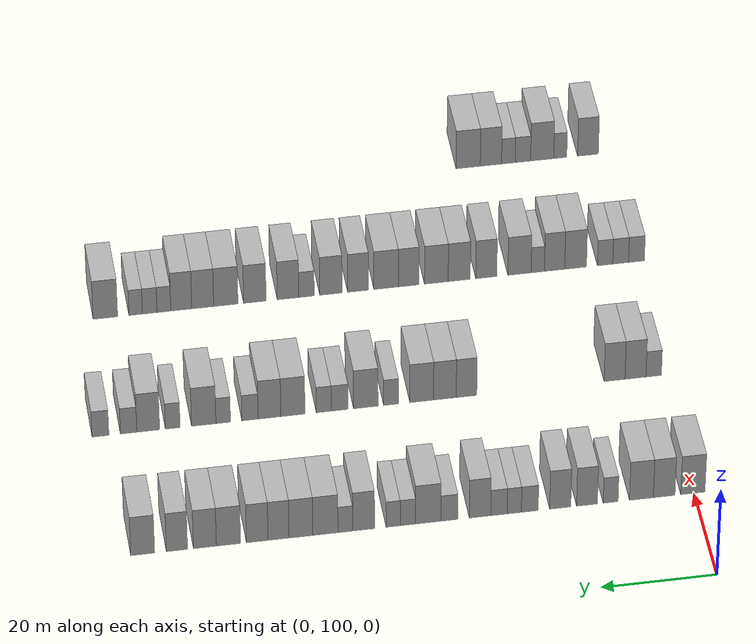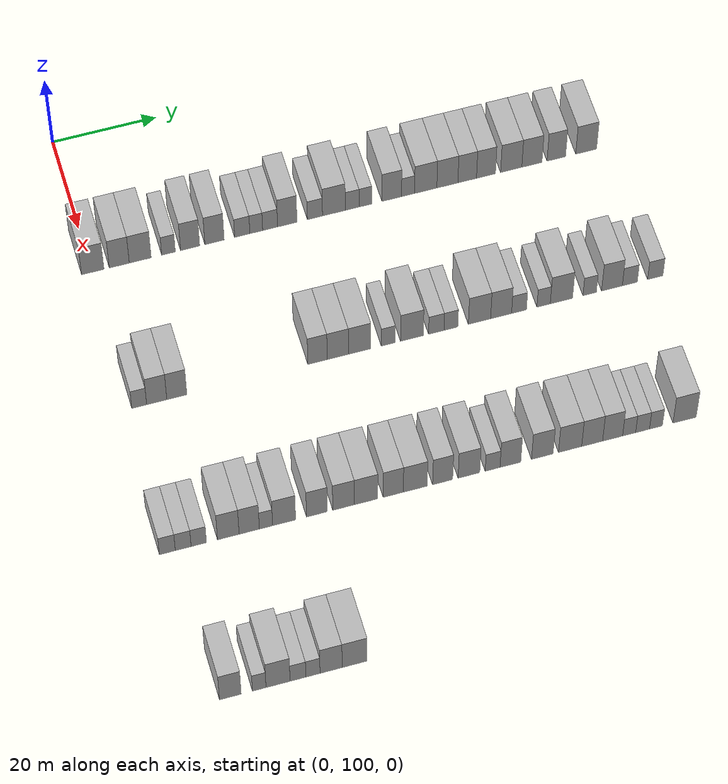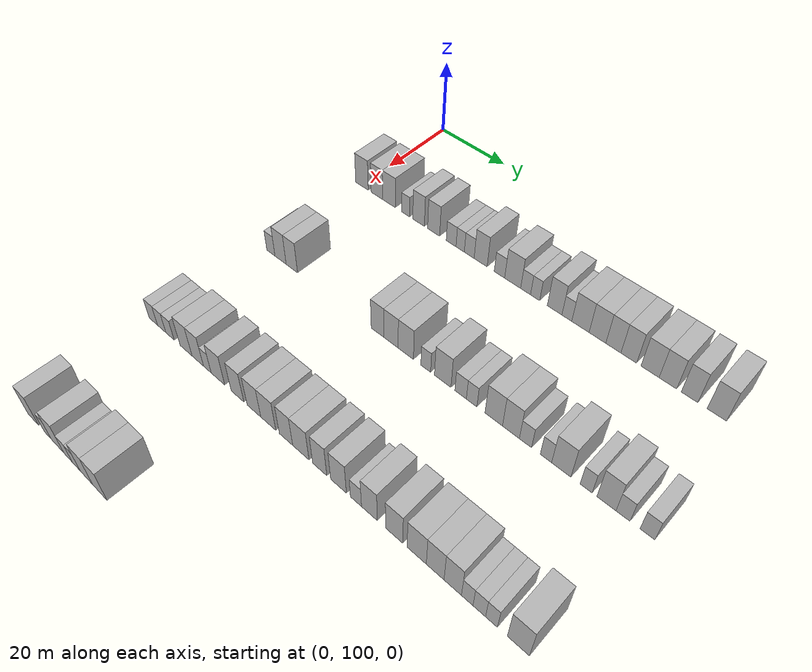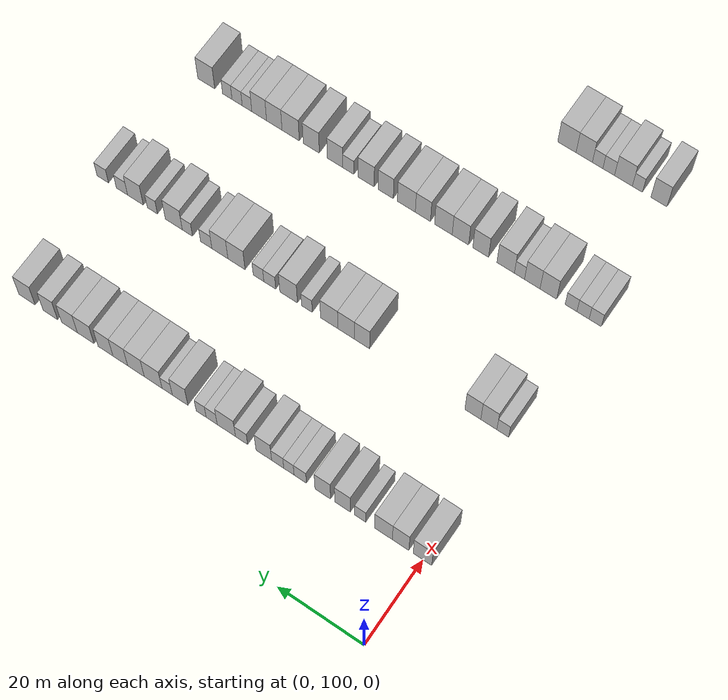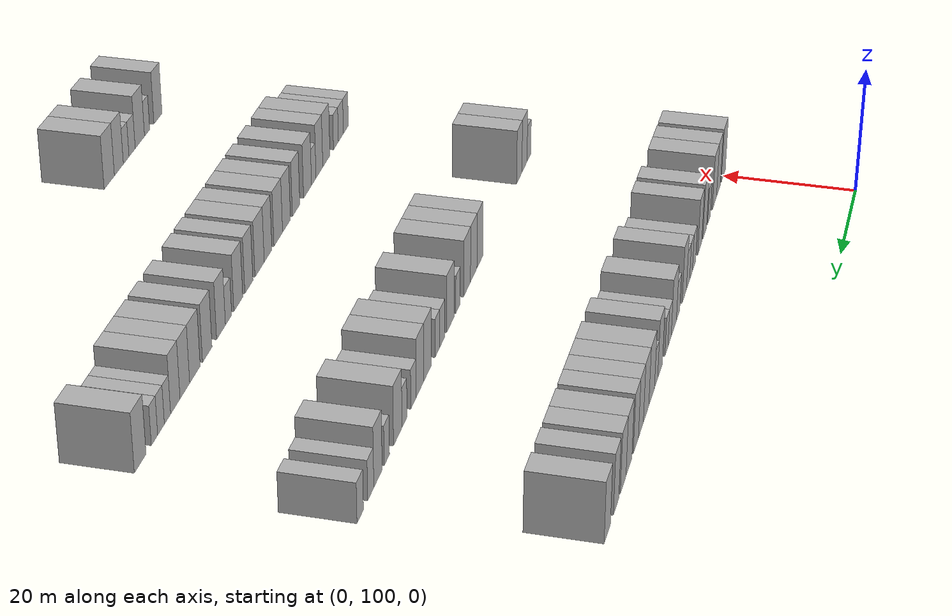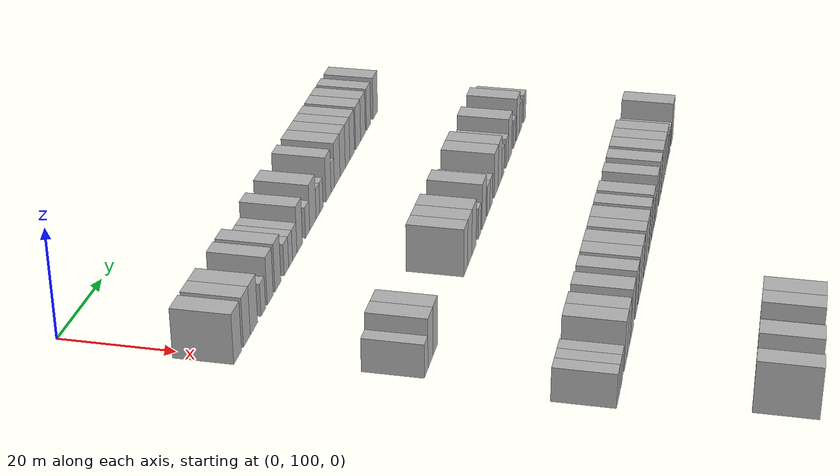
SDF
<sdf version="1.6">
 <world name="default">
  <model name="building_137">
   <static>1</static>
   <pose>25.0000 100.2034 0 0.000000 0.000000 0.000000</pose>
   <link name="link">
    <pose>0 0 4.50 0 0 0</pose>
    <collision name="collision"><geometry><box><size>10.0000 4.2472 9.0000</size></box></geometry></collision>
    <visual name="visual">
     <cast_shadows>0</cast_shadows>
     <geometry><box><size>10.0000 4.2472 9.0000</size></box></geometry>
     <material>
      <script>
       <uri>model://HANNAS_wall/materials/scripts</uri>
       <uri>model://HANNAS_wall/materials/textures</uri>
       <name>vrc/HANNAS_wall</name>
      </script>
     </material>
    </visual>
   </link>
  </model>
  <model name="building_138">
   <static>1</static>
   <pose>25.0000 105.2245 0 0.000000 0.000000 0.000000</pose>
   <link name="link">
    <pose>0 0 4.50 0 0 0</pose>
    <collision name="collision"><geometry><box><size>10.0000 3.7949 9.0000</size></box></geometry></collision>
    <visual name="visual">
     <cast_shadows>0</cast_shadows>
     <geometry><box><size>10.0000 3.7949 9.0000</size></box></geometry>
     <material>
      <script>
       <uri>model://HANNAS_wall/materials/scripts</uri>
       <uri>model://HANNAS_wall/materials/textures</uri>
       <name>vrc/HANNAS_wall</name>
      </script>
     </material>
    </visual>
   </link>
  </model>
  <model name="building_139">
   <static>1</static>
   <pose>25.0000 109.2016 0 0.000000 0.000000 0.000000</pose>
   <link name="link">
    <pose>0 0 4.50 0 0 0</pose>
    <collision name="collision"><geometry><box><size>10.0000 4.1594 9.0000</size></box></geometry></collision>
    <visual name="visual">
     <cast_shadows>0</cast_shadows>
     <geometry><box><size>10.0000 4.1594 9.0000</size></box></geometry>
     <material>
      <script>
       <uri>model://HANNAS_wall/materials/scripts</uri>
       <uri>model://HANNAS_wall/materials/textures</uri>
       <name>vrc/HANNAS_wall</name>
      </script>
     </material>
    </visual>
   </link>
  </model>
  <model name="building_140">
   <static>1</static>
   <pose>25.0000 114.5793 0 0.000000 0.000000 0.000000</pose>
   <link name="link">
    <pose>0 0 3.00 0 0 0</pose>
    <collision name="collision"><geometry><box><size>10.0000 2.5961 6.0000</size></box></geometry></collision>
    <visual name="visual">
     <cast_shadows>0</cast_shadows>
     <geometry><box><size>10.0000 2.5961 6.0000</size></box></geometry>
     <material>
      <script>
       <uri>model://HANNAS_wall/materials/scripts</uri>
       <uri>model://HANNAS_wall/materials/textures</uri>
       <name>vrc/HANNAS_wall</name>
      </script>
     </material>
    </visual>
   </link>
  </model>
  <model name="building_141">
   <static>1</static>
   <pose>25.0000 118.6974 0 0.000000 0.000000 0.000000</pose>
   <link name="link">
    <pose>0 0 4.50 0 0 0</pose>
    <collision name="collision"><geometry><box><size>10.0000 3.6401 9.0000</size></box></geometry></collision>
    <visual name="visual">
     <cast_shadows>0</cast_shadows>
     <geometry><box><size>10.0000 3.6401 9.0000</size></box></geometry>
     <material>
      <script>
       <uri>model://HANNAS_wall/materials/scripts</uri>
       <uri>model://HANNAS_wall/materials/textures</uri>
       <name>vrc/HANNAS_wall</name>
      </script>
     </material>
    </visual>
   </link>
  </model>
  <model name="building_142">
   <static>1</static>
   <pose>25.0000 123.3588 0 0.000000 0.000000 0.000000</pose>
   <link name="link">
    <pose>0 0 4.50 0 0 0</pose>
    <collision name="collision"><geometry><box><size>10.0000 3.6826 9.0000</size></box></geometry></collision>
    <visual name="visual">
     <cast_shadows>0</cast_shadows>
     <geometry><box><size>10.0000 3.6826 9.0000</size></box></geometry>
     <material>
      <script>
       <uri>model://HANNAS_wall/materials/scripts</uri>
       <uri>model://HANNAS_wall/materials/textures</uri>
       <name>vrc/HANNAS_wall</name>
      </script>
     </material>
    </visual>
   </link>
  </model>
  <model name="building_143">
   <static>1</static>
   <pose>25.0000 128.6616 0 0.000000 0.000000 0.000000</pose>
   <link name="link">
    <pose>0 0 3.00 0 0 0</pose>
    <collision name="collision"><geometry><box><size>10.0000 2.9231 6.0000</size></box></geometry></collision>
    <visual name="visual">
     <cast_shadows>0</cast_shadows>
     <geometry><box><size>10.0000 2.9231 6.0000</size></box></geometry>
     <material>
      <script>
       <uri>model://HANNAS_wall/materials/scripts</uri>
       <uri>model://HANNAS_wall/materials/textures</uri>
       <name>vrc/HANNAS_wall</name>
      </script>
     </material>
    </visual>
   </link>
  </model>
  <model name="building_144">
   <static>1</static>
   <pose>25.0000 131.3514 0 0.000000 0.000000 0.000000</pose>
   <link name="link">
    <pose>0 0 3.00 0 0 0</pose>
    <collision name="collision"><geometry><box><size>10.0000 2.4565 6.0000</size></box></geometry></collision>
    <visual name="visual">
     <cast_shadows>0</cast_shadows>
     <geometry><box><size>10.0000 2.4565 6.0000</size></box></geometry>
     <material>
      <script>
       <uri>model://HANNAS_wall/materials/scripts</uri>
       <uri>model://HANNAS_wall/materials/textures</uri>
       <name>vrc/HANNAS_wall</name>
      </script>
     </material>
    </visual>
   </link>
  </model>
  <model name="building_145">
   <static>1</static>
   <pose>25.0000 134.0137 0 0.000000 0.000000 0.000000</pose>
   <link name="link">
    <pose>0 0 3.00 0 0 0</pose>
    <collision name="collision"><geometry><box><size>10.0000 2.8680 6.0000</size></box></geometry></collision>
    <visual name="visual">
     <cast_shadows>0</cast_shadows>
     <geometry><box><size>10.0000 2.8680 6.0000</size></box></geometry>
     <material>
      <script>
       <uri>model://HANNAS_wall/materials/scripts</uri>
       <uri>model://HANNAS_wall/materials/textures</uri>
       <name>vrc/HANNAS_wall</name>
      </script>
     </material>
    </visual>
   </link>
  </model>
  <model name="building_146">
   <static>1</static>
   <pose>25.0000 137.3089 0 0.000000 0.000000 0.000000</pose>
   <link name="link">
    <pose>0 0 4.50 0 0 0</pose>
    <collision name="collision"><geometry><box><size>10.0000 3.7223 9.0000</size></box></geometry></collision>
    <visual name="visual">
     <cast_shadows>0</cast_shadows>
     <geometry><box><size>10.0000 3.7223 9.0000</size></box></geometry>
     <material>
      <script>
       <uri>model://HANNAS_wall/materials/scripts</uri>
       <uri>model://HANNAS_wall/materials/textures</uri>
       <name>vrc/HANNAS_wall</name>
      </script>
     </material>
    </visual>
   </link>
  </model>
  <model name="building_147">
   <static>1</static>
   <pose>25.0000 142.6289 0 0.000000 0.000000 0.000000</pose>
   <link name="link">
    <pose>0 0 3.00 0 0 0</pose>
    <collision name="collision"><geometry><box><size>10.0000 2.9177 6.0000</size></box></geometry></collision>
    <visual name="visual">
     <cast_shadows>0</cast_shadows>
     <geometry><box><size>10.0000 2.9177 6.0000</size></box></geometry>
     <material>
      <script>
       <uri>model://HANNAS_wall/materials/scripts</uri>
       <uri>model://HANNAS_wall/materials/textures</uri>
       <name>vrc/HANNAS_wall</name>
      </script>
     </material>
    </visual>
   </link>
  </model>
  <model name="building_148">
   <static>1</static>
   <pose>25.0000 146.2882 0 0.000000 0.000000 0.000000</pose>
   <link name="link">
    <pose>0 0 4.50 0 0 0</pose>
    <collision name="collision"><geometry><box><size>10.0000 4.4008 9.0000</size></box></geometry></collision>
    <visual name="visual">
     <cast_shadows>0</cast_shadows>
     <geometry><box><size>10.0000 4.4008 9.0000</size></box></geometry>
     <material>
      <script>
       <uri>model://HANNAS_wall/materials/scripts</uri>
       <uri>model://HANNAS_wall/materials/textures</uri>
       <name>vrc/HANNAS_wall</name>
      </script>
     </material>
    </visual>
   </link>
  </model>
  <model name="building_149">
   <static>1</static>
   <pose>25.0000 149.8187 0 0.000000 0.000000 0.000000</pose>
   <link name="link">
    <pose>0 0 3.00 0 0 0</pose>
    <collision name="collision"><geometry><box><size>10.0000 2.6602 6.0000</size></box></geometry></collision>
    <visual name="visual">
     <cast_shadows>0</cast_shadows>
     <geometry><box><size>10.0000 2.6602 6.0000</size></box></geometry>
     <material>
      <script>
       <uri>model://HANNAS_wall/materials/scripts</uri>
       <uri>model://HANNAS_wall/materials/textures</uri>
       <name>vrc/HANNAS_wall</name>
      </script>
     </material>
    </visual>
   </link>
  </model>
  <model name="building_150">
   <static>1</static>
   <pose>25.0000 152.3647 0 0.000000 0.000000 0.000000</pose>
   <link name="link">
    <pose>0 0 3.00 0 0 0</pose>
    <collision name="collision"><geometry><box><size>10.0000 2.4318 6.0000</size></box></geometry></collision>
    <visual name="visual">
     <cast_shadows>0</cast_shadows>
     <geometry><box><size>10.0000 2.4318 6.0000</size></box></geometry>
     <material>
      <script>
       <uri>model://HANNAS_wall/materials/scripts</uri>
       <uri>model://HANNAS_wall/materials/textures</uri>
       <name>vrc/HANNAS_wall</name>
      </script>
     </material>
    </visual>
   </link>
  </model>
  <model name="building_151">
   <static>1</static>
   <pose>25.0000 157.4785 0 0.000000 0.000000 0.000000</pose>
   <link name="link">
    <pose>0 0 4.50 0 0 0</pose>
    <collision name="collision"><geometry><box><size>10.0000 3.7959 9.0000</size></box></geometry></collision>
    <visual name="visual">
     <cast_shadows>0</cast_shadows>
     <geometry><box><size>10.0000 3.7959 9.0000</size></box></geometry>
     <material>
      <script>
       <uri>model://HANNAS_wall/materials/scripts</uri>
       <uri>model://HANNAS_wall/materials/textures</uri>
       <name>vrc/HANNAS_wall</name>
      </script>
     </material>
    </visual>
   </link>
  </model>
  <model name="building_152">
   <static>1</static>
   <pose>25.0000 160.6362 0 0.000000 0.000000 0.000000</pose>
   <link name="link">
    <pose>0 0 3.00 0 0 0</pose>
    <collision name="collision"><geometry><box><size>10.0000 2.5195 6.0000</size></box></geometry></collision>
    <visual name="visual">
     <cast_shadows>0</cast_shadows>
     <geometry><box><size>10.0000 2.5195 6.0000</size></box></geometry>
     <material>
      <script>
       <uri>model://HANNAS_wall/materials/scripts</uri>
       <uri>model://HANNAS_wall/materials/textures</uri>
       <name>vrc/HANNAS_wall</name>
      </script>
     </material>
    </visual>
   </link>
  </model>
  <model name="building_153">
   <static>1</static>
   <pose>25.0000 164.0690 0 0.000000 0.000000 0.000000</pose>
   <link name="link">
    <pose>0 0 4.50 0 0 0</pose>
    <collision name="collision"><geometry><box><size>10.0000 4.3460 9.0000</size></box></geometry></collision>
    <visual name="visual">
     <cast_shadows>0</cast_shadows>
     <geometry><box><size>10.0000 4.3460 9.0000</size></box></geometry>
     <material>
      <script>
       <uri>model://HANNAS_wall/materials/scripts</uri>
       <uri>model://HANNAS_wall/materials/textures</uri>
       <name>vrc/HANNAS_wall</name>
      </script>
     </material>
    </visual>
   </link>
  </model>
  <model name="building_154">
   <static>1</static>
   <pose>25.0000 168.2924 0 0.000000 0.000000 0.000000</pose>
   <link name="link">
    <pose>0 0 4.50 0 0 0</pose>
    <collision name="collision"><geometry><box><size>10.0000 4.1008 9.0000</size></box></geometry></collision>
    <visual name="visual">
     <cast_shadows>0</cast_shadows>
     <geometry><box><size>10.0000 4.1008 9.0000</size></box></geometry>
     <material>
      <script>
       <uri>model://HANNAS_wall/materials/scripts</uri>
       <uri>model://HANNAS_wall/materials/textures</uri>
       <name>vrc/HANNAS_wall</name>
      </script>
     </material>
    </visual>
   </link>
  </model>
  <model name="building_155">
   <static>1</static>
   <pose>25.0000 172.1578 0 0.000000 0.000000 0.000000</pose>
   <link name="link">
    <pose>0 0 4.50 0 0 0</pose>
    <collision name="collision"><geometry><box><size>10.0000 3.6300 9.0000</size></box></geometry></collision>
    <visual name="visual">
     <cast_shadows>0</cast_shadows>
     <geometry><box><size>10.0000 3.6300 9.0000</size></box></geometry>
     <material>
      <script>
       <uri>model://HANNAS_wall/materials/scripts</uri>
       <uri>model://HANNAS_wall/materials/textures</uri>
       <name>vrc/HANNAS_wall</name>
      </script>
     </material>
    </visual>
   </link>
  </model>
  <model name="building_156">
   <static>1</static>
   <pose>25.0000 175.8268 0 0.000000 0.000000 0.000000</pose>
   <link name="link">
    <pose>0 0 4.50 0 0 0</pose>
    <collision name="collision"><geometry><box><size>10.0000 3.7079 9.0000</size></box></geometry></collision>
    <visual name="visual">
     <cast_shadows>0</cast_shadows>
     <geometry><box><size>10.0000 3.7079 9.0000</size></box></geometry>
     <material>
      <script>
       <uri>model://HANNAS_wall/materials/scripts</uri>
       <uri>model://HANNAS_wall/materials/textures</uri>
       <name>vrc/HANNAS_wall</name>
      </script>
     </material>
    </visual>
   </link>
  </model>
  <model name="building_157">
   <static>1</static>
   <pose>25.0000 180.7628 0 0.000000 0.000000 0.000000</pose>
   <link name="link">
    <pose>0 0 4.50 0 0 0</pose>
    <collision name="collision"><geometry><box><size>10.0000 4.1640 9.0000</size></box></geometry></collision>
    <visual name="visual">
     <cast_shadows>0</cast_shadows>
     <geometry><box><size>10.0000 4.1640 9.0000</size></box></geometry>
     <material>
      <script>
       <uri>model://HANNAS_wall/materials/scripts</uri>
       <uri>model://HANNAS_wall/materials/textures</uri>
       <name>vrc/HANNAS_wall</name>
      </script>
     </material>
    </visual>
   </link>
  </model>
  <model name="building_158">
   <static>1</static>
   <pose>25.0000 184.8192 0 0.000000 0.000000 0.000000</pose>
   <link name="link">
    <pose>0 0 4.50 0 0 0</pose>
    <collision name="collision"><geometry><box><size>10.0000 3.9488 9.0000</size></box></geometry></collision>
    <visual name="visual">
     <cast_shadows>0</cast_shadows>
     <geometry><box><size>10.0000 3.9488 9.0000</size></box></geometry>
     <material>
      <script>
       <uri>model://HANNAS_wall/materials/scripts</uri>
       <uri>model://HANNAS_wall/materials/textures</uri>
       <name>vrc/HANNAS_wall</name>
      </script>
     </material>
    </visual>
   </link>
  </model>
  <model name="building_159">
   <static>1</static>
   <pose>25.0000 189.6138 0 0.000000 0.000000 0.000000</pose>
   <link name="link">
    <pose>0 0 4.50 0 0 0</pose>
    <collision name="collision"><geometry><box><size>10.0000 3.6404 9.0000</size></box></geometry></collision>
    <visual name="visual">
     <cast_shadows>0</cast_shadows>
     <geometry><box><size>10.0000 3.6404 9.0000</size></box></geometry>
     <material>
      <script>
       <uri>model://HANNAS_wall/materials/scripts</uri>
       <uri>model://HANNAS_wall/materials/textures</uri>
       <name>vrc/HANNAS_wall</name>
      </script>
     </material>
    </visual>
   </link>
  </model>
  <model name="building_160">
   <static>1</static>
   <pose>25.0000 195.4883 0 0.000000 0.000000 0.000000</pose>
   <link name="link">
    <pose>0 0 4.50 0 0 0</pose>
    <collision name="collision"><geometry><box><size>10.0000 4.1088 9.0000</size></box></geometry></collision>
    <visual name="visual">
     <cast_shadows>0</cast_shadows>
     <geometry><box><size>10.0000 4.1088 9.0000</size></box></geometry>
     <material>
      <script>
       <uri>model://HANNAS_wall/materials/scripts</uri>
       <uri>model://HANNAS_wall/materials/textures</uri>
       <name>vrc/HANNAS_wall</name>
      </script>
     </material>
    </visual>
   </link>
  </model>
  <model name="building_363">
   <static>1</static>
   <pose>55.0000 101.3332 0 0.000000 0.000000 0.000000</pose>
   <link name="link">
    <pose>0 0 3.00 0 0 0</pose>
    <collision name="collision"><geometry><box><size>10.0000 2.7608 6.0000</size></box></geometry></collision>
    <visual name="visual">
     <cast_shadows>0</cast_shadows>
     <geometry><box><size>10.0000 2.7608 6.0000</size></box></geometry>
     <material>
      <script>
       <uri>model://HANNAS_wall/materials/scripts</uri>
       <uri>model://HANNAS_wall/materials/textures</uri>
       <name>vrc/HANNAS_wall</name>
      </script>
     </material>
    </visual>
   </link>
  </model>
  <model name="building_364">
   <static>1</static>
   <pose>55.0000 104.5838 0 0.000000 0.000000 0.000000</pose>
   <link name="link">
    <pose>0 0 4.50 0 0 0</pose>
    <collision name="collision"><geometry><box><size>10.0000 3.7405 9.0000</size></box></geometry></collision>
    <visual name="visual">
     <cast_shadows>0</cast_shadows>
     <geometry><box><size>10.0000 3.7405 9.0000</size></box></geometry>
     <material>
      <script>
       <uri>model://HANNAS_wall/materials/scripts</uri>
       <uri>model://HANNAS_wall/materials/textures</uri>
       <name>vrc/HANNAS_wall</name>
      </script>
     </material>
    </visual>
   </link>
  </model>
  <model name="building_365">
   <static>1</static>
   <pose>55.0000 108.3172 0 0.000000 0.000000 0.000000</pose>
   <link name="link">
    <pose>0 0 4.50 0 0 0</pose>
    <collision name="collision"><geometry><box><size>10.0000 3.7264 9.0000</size></box></geometry></collision>
    <visual name="visual">
     <cast_shadows>0</cast_shadows>
     <geometry><box><size>10.0000 3.7264 9.0000</size></box></geometry>
     <material>
      <script>
       <uri>model://HANNAS_wall/materials/scripts</uri>
       <uri>model://HANNAS_wall/materials/textures</uri>
       <name>vrc/HANNAS_wall</name>
      </script>
     </material>
    </visual>
   </link>
  </model>
  <model name="building_366">
   <static>1</static>
   <pose>55.0000 134.6439 0 0.000000 0.000000 0.000000</pose>
   <link name="link">
    <pose>0 0 4.50 0 0 0</pose>
    <collision name="collision"><geometry><box><size>10.0000 3.6423 9.0000</size></box></geometry></collision>
    <visual name="visual">
     <cast_shadows>0</cast_shadows>
     <geometry><box><size>10.0000 3.6423 9.0000</size></box></geometry>
     <material>
      <script>
       <uri>model://HANNAS_wall/materials/scripts</uri>
       <uri>model://HANNAS_wall/materials/textures</uri>
       <name>vrc/HANNAS_wall</name>
      </script>
     </material>
    </visual>
   </link>
  </model>
  <model name="building_367">
   <static>1</static>
   <pose>55.0000 138.4692 0 0.000000 0.000000 0.000000</pose>
   <link name="link">
    <pose>0 0 4.50 0 0 0</pose>
    <collision name="collision"><geometry><box><size>10.0000 4.0081 9.0000</size></box></geometry></collision>
    <visual name="visual">
     <cast_shadows>0</cast_shadows>
     <geometry><box><size>10.0000 4.0081 9.0000</size></box></geometry>
     <material>
      <script>
       <uri>model://HANNAS_wall/materials/scripts</uri>
       <uri>model://HANNAS_wall/materials/textures</uri>
       <name>vrc/HANNAS_wall</name>
      </script>
     </material>
    </visual>
   </link>
  </model>
  <model name="building_368">
   <static>1</static>
   <pose>55.0000 142.5794 0 0.000000 0.000000 0.000000</pose>
   <link name="link">
    <pose>0 0 4.50 0 0 0</pose>
    <collision name="collision"><geometry><box><size>10.0000 4.2122 9.0000</size></box></geometry></collision>
    <visual name="visual">
     <cast_shadows>0</cast_shadows>
     <geometry><box><size>10.0000 4.2122 9.0000</size></box></geometry>
     <material>
      <script>
       <uri>model://HANNAS_wall/materials/scripts</uri>
       <uri>model://HANNAS_wall/materials/textures</uri>
       <name>vrc/HANNAS_wall</name>
      </script>
     </material>
    </visual>
   </link>
  </model>
  <model name="building_369">
   <static>1</static>
   <pose>55.0000 147.9973 0 0.000000 0.000000 0.000000</pose>
   <link name="link">
    <pose>0 0 3.00 0 0 0</pose>
    <collision name="collision"><geometry><box><size>10.0000 2.6236 6.0000</size></box></geometry></collision>
    <visual name="visual">
     <cast_shadows>0</cast_shadows>
     <geometry><box><size>10.0000 2.6236 6.0000</size></box></geometry>
     <material>
      <script>
       <uri>model://HANNAS_wall/materials/scripts</uri>
       <uri>model://HANNAS_wall/materials/textures</uri>
       <name>vrc/HANNAS_wall</name>
      </script>
     </material>
    </visual>
   </link>
  </model>
  <model name="building_370">
   <static>1</static>
   <pose>55.0000 152.4681 0 0.000000 0.000000 0.000000</pose>
   <link name="link">
    <pose>0 0 4.50 0 0 0</pose>
    <collision name="collision"><geometry><box><size>10.0000 4.3181 9.0000</size></box></geometry></collision>
    <visual name="visual">
     <cast_shadows>0</cast_shadows>
     <geometry><box><size>10.0000 4.3181 9.0000</size></box></geometry>
     <material>
      <script>
       <uri>model://HANNAS_wall/materials/scripts</uri>
       <uri>model://HANNAS_wall/materials/textures</uri>
       <name>vrc/HANNAS_wall</name>
      </script>
     </material>
    </visual>
   </link>
  </model>
  <model name="building_371">
   <static>1</static>
   <pose>55.0000 157.0930 0 0.000000 0.000000 0.000000</pose>
   <link name="link">
    <pose>0 0 3.00 0 0 0</pose>
    <collision name="collision"><geometry><box><size>10.0000 2.9317 6.0000</size></box></geometry></collision>
    <visual name="visual">
     <cast_shadows>0</cast_shadows>
     <geometry><box><size>10.0000 2.9317 6.0000</size></box></geometry>
     <material>
      <script>
       <uri>model://HANNAS_wall/materials/scripts</uri>
       <uri>model://HANNAS_wall/materials/textures</uri>
       <name>vrc/HANNAS_wall</name>
      </script>
     </material>
    </visual>
   </link>
  </model>
  <model name="building_372">
   <static>1</static>
   <pose>55.0000 159.8770 0 0.000000 0.000000 0.000000</pose>
   <link name="link">
    <pose>0 0 3.00 0 0 0</pose>
    <collision name="collision"><geometry><box><size>10.0000 2.6363 6.0000</size></box></geometry></collision>
    <visual name="visual">
     <cast_shadows>0</cast_shadows>
     <geometry><box><size>10.0000 2.6363 6.0000</size></box></geometry>
     <material>
      <script>
       <uri>model://HANNAS_wall/materials/scripts</uri>
       <uri>model://HANNAS_wall/materials/textures</uri>
       <name>vrc/HANNAS_wall</name>
      </script>
     </material>
    </visual>
   </link>
  </model>
  <model name="building_373">
   <static>1</static>
   <pose>55.0000 165.3203 0 0.000000 0.000000 0.000000</pose>
   <link name="link">
    <pose>0 0 4.50 0 0 0</pose>
    <collision name="collision"><geometry><box><size>10.0000 4.2503 9.0000</size></box></geometry></collision>
    <visual name="visual">
     <cast_shadows>0</cast_shadows>
     <geometry><box><size>10.0000 4.2503 9.0000</size></box></geometry>
     <material>
      <script>
       <uri>model://HANNAS_wall/materials/scripts</uri>
       <uri>model://HANNAS_wall/materials/textures</uri>
       <name>vrc/HANNAS_wall</name>
      </script>
     </material>
    </visual>
   </link>
  </model>
  <model name="building_374">
   <static>1</static>
   <pose>55.0000 169.4497 0 0.000000 0.000000 0.000000</pose>
   <link name="link">
    <pose>0 0 4.50 0 0 0</pose>
    <collision name="collision"><geometry><box><size>10.0000 4.0086 9.0000</size></box></geometry></collision>
    <visual name="visual">
     <cast_shadows>0</cast_shadows>
     <geometry><box><size>10.0000 4.0086 9.0000</size></box></geometry>
     <material>
      <script>
       <uri>model://HANNAS_wall/materials/scripts</uri>
       <uri>model://HANNAS_wall/materials/textures</uri>
       <name>vrc/HANNAS_wall</name>
      </script>
     </material>
    </visual>
   </link>
  </model>
  <model name="building_375">
   <static>1</static>
   <pose>55.0000 172.8752 0 0.000000 0.000000 0.000000</pose>
   <link name="link">
    <pose>0 0 3.00 0 0 0</pose>
    <collision name="collision"><geometry><box><size>10.0000 2.8423 6.0000</size></box></geometry></collision>
    <visual name="visual">
     <cast_shadows>0</cast_shadows>
     <geometry><box><size>10.0000 2.8423 6.0000</size></box></geometry>
     <material>
      <script>
       <uri>model://HANNAS_wall/materials/scripts</uri>
       <uri>model://HANNAS_wall/materials/textures</uri>
       <name>vrc/HANNAS_wall</name>
      </script>
     </material>
    </visual>
   </link>
  </model>
  <model name="building_376">
   <static>1</static>
   <pose>55.0000 177.5787 0 0.000000 0.000000 0.000000</pose>
   <link name="link">
    <pose>0 0 3.00 0 0 0</pose>
    <collision name="collision"><geometry><box><size>10.0000 2.5647 6.0000</size></box></geometry></collision>
    <visual name="visual">
     <cast_shadows>0</cast_shadows>
     <geometry><box><size>10.0000 2.5647 6.0000</size></box></geometry>
     <material>
      <script>
       <uri>model://HANNAS_wall/materials/scripts</uri>
       <uri>model://HANNAS_wall/materials/textures</uri>
       <name>vrc/HANNAS_wall</name>
      </script>
     </material>
    </visual>
   </link>
  </model>
  <model name="building_377">
   <static>1</static>
   <pose>55.0000 181.0025 0 0.000000 0.000000 0.000000</pose>
   <link name="link">
    <pose>0 0 4.50 0 0 0</pose>
    <collision name="collision"><geometry><box><size>10.0000 4.2831 9.0000</size></box></geometry></collision>
    <visual name="visual">
     <cast_shadows>0</cast_shadows>
     <geometry><box><size>10.0000 4.2831 9.0000</size></box></geometry>
     <material>
      <script>
       <uri>model://HANNAS_wall/materials/scripts</uri>
       <uri>model://HANNAS_wall/materials/textures</uri>
       <name>vrc/HANNAS_wall</name>
      </script>
     </material>
    </visual>
   </link>
  </model>
  <model name="building_378">
   <static>1</static>
   <pose>55.0000 186.4347 0 0.000000 0.000000 0.000000</pose>
   <link name="link">
    <pose>0 0 3.00 0 0 0</pose>
    <collision name="collision"><geometry><box><size>10.0000 2.5812 6.0000</size></box></geometry></collision>
    <visual name="visual">
     <cast_shadows>0</cast_shadows>
     <geometry><box><size>10.0000 2.5812 6.0000</size></box></geometry>
     <material>
      <script>
       <uri>model://HANNAS_wall/materials/scripts</uri>
       <uri>model://HANNAS_wall/materials/textures</uri>
       <name>vrc/HANNAS_wall</name>
      </script>
     </material>
    </visual>
   </link>
  </model>
  <model name="building_379">
   <static>1</static>
   <pose>55.0000 190.7299 0 0.000000 0.000000 0.000000</pose>
   <link name="link">
    <pose>0 0 4.50 0 0 0</pose>
    <collision name="collision"><geometry><box><size>10.0000 4.0092 9.0000</size></box></geometry></collision>
    <visual name="visual">
     <cast_shadows>0</cast_shadows>
     <geometry><box><size>10.0000 4.0092 9.0000</size></box></geometry>
     <material>
      <script>
       <uri>model://HANNAS_wall/materials/scripts</uri>
       <uri>model://HANNAS_wall/materials/textures</uri>
       <name>vrc/HANNAS_wall</name>
      </script>
     </material>
    </visual>
   </link>
  </model>
  <model name="building_380">
   <static>1</static>
   <pose>55.0000 194.1733 0 0.000000 0.000000 0.000000</pose>
   <link name="link">
    <pose>0 0 3.00 0 0 0</pose>
    <collision name="collision"><geometry><box><size>10.0000 2.8776 6.0000</size></box></geometry></collision>
    <visual name="visual">
     <cast_shadows>0</cast_shadows>
     <geometry><box><size>10.0000 2.8776 6.0000</size></box></geometry>
     <material>
      <script>
       <uri>model://HANNAS_wall/materials/scripts</uri>
       <uri>model://HANNAS_wall/materials/textures</uri>
       <name>vrc/HANNAS_wall</name>
      </script>
     </material>
    </visual>
   </link>
  </model>
  <model name="building_381">
   <static>1</static>
   <pose>55.0000 199.0874 0 0.000000 0.000000 0.000000</pose>
   <link name="link">
    <pose>0 0 3.00 0 0 0</pose>
    <collision name="collision"><geometry><box><size>10.0000 2.9507 6.0000</size></box></geometry></collision>
    <visual name="visual">
     <cast_shadows>0</cast_shadows>
     <geometry><box><size>10.0000 2.9507 6.0000</size></box></geometry>
     <material>
      <script>
       <uri>model://HANNAS_wall/materials/scripts</uri>
       <uri>model://HANNAS_wall/materials/textures</uri>
       <name>vrc/HANNAS_wall</name>
      </script>
     </material>
    </visual>
   </link>
  </model>
  <model name="building_574">
   <static>1</static>
   <pose>85.0000 98.7414 0 0.000000 0.000000 0.000000</pose>
   <link name="link">
    <pose>0 0 3.00 0 0 0</pose>
    <collision name="collision"><geometry><box><size>10.0000 2.8935 6.0000</size></box></geometry></collision>
    <visual name="visual">
     <cast_shadows>0</cast_shadows>
     <geometry><box><size>10.0000 2.8935 6.0000</size></box></geometry>
     <material>
      <script>
       <uri>model://HANNAS_wall/materials/scripts</uri>
       <uri>model://HANNAS_wall/materials/textures</uri>
       <name>vrc/HANNAS_wall</name>
      </script>
     </material>
    </visual>
   </link>
  </model>
  <model name="building_575">
   <static>1</static>
   <pose>85.0000 101.6231 0 0.000000 0.000000 0.000000</pose>
   <link name="link">
    <pose>0 0 3.00 0 0 0</pose>
    <collision name="collision"><geometry><box><size>10.0000 2.8699 6.0000</size></box></geometry></collision>
    <visual name="visual">
     <cast_shadows>0</cast_shadows>
     <geometry><box><size>10.0000 2.8699 6.0000</size></box></geometry>
     <material>
      <script>
       <uri>model://HANNAS_wall/materials/scripts</uri>
       <uri>model://HANNAS_wall/materials/textures</uri>
       <name>vrc/HANNAS_wall</name>
      </script>
     </material>
    </visual>
   </link>
  </model>
  <model name="building_576">
   <static>1</static>
   <pose>85.0000 104.4522 0 0.000000 0.000000 0.000000</pose>
   <link name="link">
    <pose>0 0 3.00 0 0 0</pose>
    <collision name="collision"><geometry><box><size>10.0000 2.7881 6.0000</size></box></geometry></collision>
    <visual name="visual">
     <cast_shadows>0</cast_shadows>
     <geometry><box><size>10.0000 2.7881 6.0000</size></box></geometry>
     <material>
      <script>
       <uri>model://HANNAS_wall/materials/scripts</uri>
       <uri>model://HANNAS_wall/materials/textures</uri>
       <name>vrc/HANNAS_wall</name>
      </script>
     </material>
    </visual>
   </link>
  </model>
  <model name="building_577">
   <static>1</static>
   <pose>85.0000 109.8229 0 0.000000 0.000000 0.000000</pose>
   <link name="link">
    <pose>0 0 4.50 0 0 0</pose>
    <collision name="collision"><geometry><box><size>10.0000 3.9533 9.0000</size></box></geometry></collision>
    <visual name="visual">
     <cast_shadows>0</cast_shadows>
     <geometry><box><size>10.0000 3.9533 9.0000</size></box></geometry>
     <material>
      <script>
       <uri>model://HANNAS_wall/materials/scripts</uri>
       <uri>model://HANNAS_wall/materials/textures</uri>
       <name>vrc/HANNAS_wall</name>
      </script>
     </material>
    </visual>
   </link>
  </model>
  <model name="building_578">
   <static>1</static>
   <pose>85.0000 113.6490 0 0.000000 0.000000 0.000000</pose>
   <link name="link">
    <pose>0 0 4.50 0 0 0</pose>
    <collision name="collision"><geometry><box><size>10.0000 3.6991 9.0000</size></box></geometry></collision>
    <visual name="visual">
     <cast_shadows>0</cast_shadows>
     <geometry><box><size>10.0000 3.6991 9.0000</size></box></geometry>
     <material>
      <script>
       <uri>model://HANNAS_wall/materials/scripts</uri>
       <uri>model://HANNAS_wall/materials/textures</uri>
       <name>vrc/HANNAS_wall</name>
      </script>
     </material>
    </visual>
   </link>
  </model>
  <model name="building_579">
   <static>1</static>
   <pose>85.0000 116.7100 0 0.000000 0.000000 0.000000</pose>
   <link name="link">
    <pose>0 0 3.00 0 0 0</pose>
    <collision name="collision"><geometry><box><size>10.0000 2.4229 6.0000</size></box></geometry></collision>
    <visual name="visual">
     <cast_shadows>0</cast_shadows>
     <geometry><box><size>10.0000 2.4229 6.0000</size></box></geometry>
     <material>
      <script>
       <uri>model://HANNAS_wall/materials/scripts</uri>
       <uri>model://HANNAS_wall/materials/textures</uri>
       <name>vrc/HANNAS_wall</name>
      </script>
     </material>
    </visual>
   </link>
  </model>
  <model name="building_580">
   <static>1</static>
   <pose>85.0000 120.0274 0 0.000000 0.000000 0.000000</pose>
   <link name="link">
    <pose>0 0 4.50 0 0 0</pose>
    <collision name="collision"><geometry><box><size>10.0000 4.2118 9.0000</size></box></geometry></collision>
    <visual name="visual">
     <cast_shadows>0</cast_shadows>
     <geometry><box><size>10.0000 4.2118 9.0000</size></box></geometry>
     <material>
      <script>
       <uri>model://HANNAS_wall/materials/scripts</uri>
       <uri>model://HANNAS_wall/materials/textures</uri>
       <name>vrc/HANNAS_wall</name>
      </script>
     </material>
    </visual>
   </link>
  </model>
  <model name="building_581">
   <static>1</static>
   <pose>85.0000 126.0415 0 0.000000 0.000000 0.000000</pose>
   <link name="link">
    <pose>0 0 4.50 0 0 0</pose>
    <collision name="collision"><geometry><box><size>10.0000 3.8164 9.0000</size></box></geometry></collision>
    <visual name="visual">
     <cast_shadows>0</cast_shadows>
     <geometry><box><size>10.0000 3.8164 9.0000</size></box></geometry>
     <material>
      <script>
       <uri>model://HANNAS_wall/materials/scripts</uri>
       <uri>model://HANNAS_wall/materials/textures</uri>
       <name>vrc/HANNAS_wall</name>
      </script>
     </material>
    </visual>
   </link>
  </model>
  <model name="building_582">
   <static>1</static>
   <pose>85.0000 130.9466 0 0.000000 0.000000 0.000000</pose>
   <link name="link">
    <pose>0 0 4.50 0 0 0</pose>
    <collision name="collision"><geometry><box><size>10.0000 3.9937 9.0000</size></box></geometry></collision>
    <visual name="visual">
     <cast_shadows>0</cast_shadows>
     <geometry><box><size>10.0000 3.9937 9.0000</size></box></geometry>
     <material>
      <script>
       <uri>model://HANNAS_wall/materials/scripts</uri>
       <uri>model://HANNAS_wall/materials/textures</uri>
       <name>vrc/HANNAS_wall</name>
      </script>
     </material>
    </visual>
   </link>
  </model>
  <model name="building_583">
   <static>1</static>
   <pose>85.0000 135.0914 0 0.000000 0.000000 0.000000</pose>
   <link name="link">
    <pose>0 0 4.50 0 0 0</pose>
    <collision name="collision"><geometry><box><size>10.0000 4.2959 9.0000</size></box></geometry></collision>
    <visual name="visual">
     <cast_shadows>0</cast_shadows>
     <geometry><box><size>10.0000 4.2959 9.0000</size></box></geometry>
     <material>
      <script>
       <uri>model://HANNAS_wall/materials/scripts</uri>
       <uri>model://HANNAS_wall/materials/textures</uri>
       <name>vrc/HANNAS_wall</name>
      </script>
     </material>
    </visual>
   </link>
  </model>
  <model name="building_584">
   <static>1</static>
   <pose>85.0000 140.0987 0 0.000000 0.000000 0.000000</pose>
   <link name="link">
    <pose>0 0 4.50 0 0 0</pose>
    <collision name="collision"><geometry><box><size>10.0000 3.7188 9.0000</size></box></geometry></collision>
    <visual name="visual">
     <cast_shadows>0</cast_shadows>
     <geometry><box><size>10.0000 3.7188 9.0000</size></box></geometry>
     <material>
      <script>
       <uri>model://HANNAS_wall/materials/scripts</uri>
       <uri>model://HANNAS_wall/materials/textures</uri>
       <name>vrc/HANNAS_wall</name>
      </script>
     </material>
    </visual>
   </link>
  </model>
  <model name="building_585">
   <static>1</static>
   <pose>85.0000 144.1655 0 0.000000 0.000000 0.000000</pose>
   <link name="link">
    <pose>0 0 4.50 0 0 0</pose>
    <collision name="collision"><geometry><box><size>10.0000 4.4150 9.0000</size></box></geometry></collision>
    <visual name="visual">
     <cast_shadows>0</cast_shadows>
     <geometry><box><size>10.0000 4.4150 9.0000</size></box></geometry>
     <material>
      <script>
       <uri>model://HANNAS_wall/materials/scripts</uri>
       <uri>model://HANNAS_wall/materials/textures</uri>
       <name>vrc/HANNAS_wall</name>
      </script>
     </material>
    </visual>
   </link>
  </model>
  <model name="building_586">
   <static>1</static>
   <pose>85.0000 149.2382 0 0.000000 0.000000 0.000000</pose>
   <link name="link">
    <pose>0 0 4.50 0 0 0</pose>
    <collision name="collision"><geometry><box><size>10.0000 3.7304 9.0000</size></box></geometry></collision>
    <visual name="visual">
     <cast_shadows>0</cast_shadows>
     <geometry><box><size>10.0000 3.7304 9.0000</size></box></geometry>
     <material>
      <script>
       <uri>model://HANNAS_wall/materials/scripts</uri>
       <uri>model://HANNAS_wall/materials/textures</uri>
       <name>vrc/HANNAS_wall</name>
      </script>
     </material>
    </visual>
   </link>
  </model>
  <model name="building_587">
   <static>1</static>
   <pose>85.0000 154.1215 0 0.000000 0.000000 0.000000</pose>
   <link name="link">
    <pose>0 0 4.50 0 0 0</pose>
    <collision name="collision"><geometry><box><size>10.0000 4.0362 9.0000</size></box></geometry></collision>
    <visual name="visual">
     <cast_shadows>0</cast_shadows>
     <geometry><box><size>10.0000 4.0362 9.0000</size></box></geometry>
     <material>
      <script>
       <uri>model://HANNAS_wall/materials/scripts</uri>
       <uri>model://HANNAS_wall/materials/textures</uri>
       <name>vrc/HANNAS_wall</name>
      </script>
     </material>
    </visual>
   </link>
  </model>
  <model name="building_588">
   <static>1</static>
   <pose>85.0000 158.5252 0 0.000000 0.000000 0.000000</pose>
   <link name="link">
    <pose>0 0 3.00 0 0 0</pose>
    <collision name="collision"><geometry><box><size>10.0000 2.7712 6.0000</size></box></geometry></collision>
    <visual name="visual">
     <cast_shadows>0</cast_shadows>
     <geometry><box><size>10.0000 2.7712 6.0000</size></box></geometry>
     <material>
      <script>
       <uri>model://HANNAS_wall/materials/scripts</uri>
       <uri>model://HANNAS_wall/materials/textures</uri>
       <name>vrc/HANNAS_wall</name>
      </script>
     </material>
    </visual>
   </link>
  </model>
  <model name="building_589">
   <static>1</static>
   <pose>85.0000 161.8479 0 0.000000 0.000000 0.000000</pose>
   <link name="link">
    <pose>0 0 4.50 0 0 0</pose>
    <collision name="collision"><geometry><box><size>10.0000 3.8743 9.0000</size></box></geometry></collision>
    <visual name="visual">
     <cast_shadows>0</cast_shadows>
     <geometry><box><size>10.0000 3.8743 9.0000</size></box></geometry>
     <material>
      <script>
       <uri>model://HANNAS_wall/materials/scripts</uri>
       <uri>model://HANNAS_wall/materials/textures</uri>
       <name>vrc/HANNAS_wall</name>
      </script>
     </material>
    </visual>
   </link>
  </model>
  <model name="building_590">
   <static>1</static>
   <pose>85.0000 167.8072 0 0.000000 0.000000 0.000000</pose>
   <link name="link">
    <pose>0 0 4.50 0 0 0</pose>
    <collision name="collision"><geometry><box><size>10.0000 4.0443 9.0000</size></box></geometry></collision>
    <visual name="visual">
     <cast_shadows>0</cast_shadows>
     <geometry><box><size>10.0000 4.0443 9.0000</size></box></geometry>
     <material>
      <script>
       <uri>model://HANNAS_wall/materials/scripts</uri>
       <uri>model://HANNAS_wall/materials/textures</uri>
       <name>vrc/HANNAS_wall</name>
      </script>
     </material>
    </visual>
   </link>
  </model>
  <model name="building_591">
   <static>1</static>
   <pose>85.0000 173.0108 0 0.000000 0.000000 0.000000</pose>
   <link name="link">
    <pose>0 0 4.50 0 0 0</pose>
    <collision name="collision"><geometry><box><size>10.0000 4.3629 9.0000</size></box></geometry></collision>
    <visual name="visual">
     <cast_shadows>0</cast_shadows>
     <geometry><box><size>10.0000 4.3629 9.0000</size></box></geometry>
     <material>
      <script>
       <uri>model://HANNAS_wall/materials/scripts</uri>
       <uri>model://HANNAS_wall/materials/textures</uri>
       <name>vrc/HANNAS_wall</name>
      </script>
     </material>
    </visual>
   </link>
  </model>
  <model name="building_592">
   <static>1</static>
   <pose>85.0000 177.1569 0 0.000000 0.000000 0.000000</pose>
   <link name="link">
    <pose>0 0 4.50 0 0 0</pose>
    <collision name="collision"><geometry><box><size>10.0000 3.9293 9.0000</size></box></geometry></collision>
    <visual name="visual">
     <cast_shadows>0</cast_shadows>
     <geometry><box><size>10.0000 3.9293 9.0000</size></box></geometry>
     <material>
      <script>
       <uri>model://HANNAS_wall/materials/scripts</uri>
       <uri>model://HANNAS_wall/materials/textures</uri>
       <name>vrc/HANNAS_wall</name>
      </script>
     </material>
    </visual>
   </link>
  </model>
  <model name="building_593">
   <static>1</static>
   <pose>85.0000 181.0038 0 0.000000 0.000000 0.000000</pose>
   <link name="link">
    <pose>0 0 4.50 0 0 0</pose>
    <collision name="collision"><geometry><box><size>10.0000 3.7645 9.0000</size></box></geometry></collision>
    <visual name="visual">
     <cast_shadows>0</cast_shadows>
     <geometry><box><size>10.0000 3.7645 9.0000</size></box></geometry>
     <material>
      <script>
       <uri>model://HANNAS_wall/materials/scripts</uri>
       <uri>model://HANNAS_wall/materials/textures</uri>
       <name>vrc/HANNAS_wall</name>
      </script>
     </material>
    </visual>
   </link>
  </model>
  <model name="building_594">
   <static>1</static>
   <pose>85.0000 184.1147 0 0.000000 0.000000 0.000000</pose>
   <link name="link">
    <pose>0 0 3.00 0 0 0</pose>
    <collision name="collision"><geometry><box><size>10.0000 2.4574 6.0000</size></box></geometry></collision>
    <visual name="visual">
     <cast_shadows>0</cast_shadows>
     <geometry><box><size>10.0000 2.4574 6.0000</size></box></geometry>
     <material>
      <script>
       <uri>model://HANNAS_wall/materials/scripts</uri>
       <uri>model://HANNAS_wall/materials/textures</uri>
       <name>vrc/HANNAS_wall</name>
      </script>
     </material>
    </visual>
   </link>
  </model>
  <model name="building_595">
   <static>1</static>
   <pose>85.0000 186.6492 0 0.000000 0.000000 0.000000</pose>
   <link name="link">
    <pose>0 0 3.00 0 0 0</pose>
    <collision name="collision"><geometry><box><size>10.0000 2.6116 6.0000</size></box></geometry></collision>
    <visual name="visual">
     <cast_shadows>0</cast_shadows>
     <geometry><box><size>10.0000 2.6116 6.0000</size></box></geometry>
     <material>
      <script>
       <uri>model://HANNAS_wall/materials/scripts</uri>
       <uri>model://HANNAS_wall/materials/textures</uri>
       <name>vrc/HANNAS_wall</name>
      </script>
     </material>
    </visual>
   </link>
  </model>
  <model name="building_596">
   <static>1</static>
   <pose>85.0000 189.1719 0 0.000000 0.000000 0.000000</pose>
   <link name="link">
    <pose>0 0 3.00 0 0 0</pose>
    <collision name="collision"><geometry><box><size>10.0000 2.4338 6.0000</size></box></geometry></collision>
    <visual name="visual">
     <cast_shadows>0</cast_shadows>
     <geometry><box><size>10.0000 2.4338 6.0000</size></box></geometry>
     <material>
      <script>
       <uri>model://HANNAS_wall/materials/scripts</uri>
       <uri>model://HANNAS_wall/materials/textures</uri>
       <name>vrc/HANNAS_wall</name>
      </script>
     </material>
    </visual>
   </link>
  </model>
  <model name="building_597">
   <static>1</static>
   <pose>85.0000 194.5820 0 0.000000 0.000000 0.000000</pose>
   <link name="link">
    <pose>0 0 4.50 0 0 0</pose>
    <collision name="collision"><geometry><box><size>10.0000 4.3864 9.0000</size></box></geometry></collision>
    <visual name="visual">
     <cast_shadows>0</cast_shadows>
     <geometry><box><size>10.0000 4.3864 9.0000</size></box></geometry>
     <material>
      <script>
       <uri>model://HANNAS_wall/materials/scripts</uri>
       <uri>model://HANNAS_wall/materials/textures</uri>
       <name>vrc/HANNAS_wall</name>
      </script>
     </material>
    </visual>
   </link>
  </model>
  <model name="building_790">
   <static>1</static>
   <pose>115.0000 102.1029 0 0.000000 0.000000 0.000000</pose>
   <link name="link">
    <pose>0 0 4.50 0 0 0</pose>
    <collision name="collision"><geometry><box><size>10.0000 3.8615 9.0000</size></box></geometry></collision>
    <visual name="visual">
     <cast_shadows>0</cast_shadows>
     <geometry><box><size>10.0000 3.8615 9.0000</size></box></geometry>
     <material>
      <script>
       <uri>model://HANNAS_wall/materials/scripts</uri>
       <uri>model://HANNAS_wall/materials/textures</uri>
       <name>vrc/HANNAS_wall</name>
      </script>
     </material>
    </visual>
   </link>
  </model>
  <model name="building_791">
   <static>1</static>
   <pose>115.0000 107.2446 0 0.000000 0.000000 0.000000</pose>
   <link name="link">
    <pose>0 0 3.00 0 0 0</pose>
    <collision name="collision"><geometry><box><size>10.0000 2.4220 6.0000</size></box></geometry></collision>
    <visual name="visual">
     <cast_shadows>0</cast_shadows>
     <geometry><box><size>10.0000 2.4220 6.0000</size></box></geometry>
     <material>
      <script>
       <uri>model://HANNAS_wall/materials/scripts</uri>
       <uri>model://HANNAS_wall/materials/textures</uri>
       <name>vrc/HANNAS_wall</name>
      </script>
     </material>
    </visual>
   </link>
  </model>
  <model name="building_792">
   <static>1</static>
   <pose>115.0000 110.6037 0 0.000000 0.000000 0.000000</pose>
   <link name="link">
    <pose>0 0 4.50 0 0 0</pose>
    <collision name="collision"><geometry><box><size>10.0000 4.2961 9.0000</size></box></geometry></collision>
    <visual name="visual">
     <cast_shadows>0</cast_shadows>
     <geometry><box><size>10.0000 4.2961 9.0000</size></box></geometry>
     <material>
      <script>
       <uri>model://HANNAS_wall/materials/scripts</uri>
       <uri>model://HANNAS_wall/materials/textures</uri>
       <name>vrc/HANNAS_wall</name>
      </script>
     </material>
    </visual>
   </link>
  </model>
  <model name="building_793">
   <static>1</static>
   <pose>115.0000 114.1630 0 0.000000 0.000000 0.000000</pose>
   <link name="link">
    <pose>0 0 3.00 0 0 0</pose>
    <collision name="collision"><geometry><box><size>10.0000 2.8227 6.0000</size></box></geometry></collision>
    <visual name="visual">
     <cast_shadows>0</cast_shadows>
     <geometry><box><size>10.0000 2.8227 6.0000</size></box></geometry>
     <material>
      <script>
       <uri>model://HANNAS_wall/materials/scripts</uri>
       <uri>model://HANNAS_wall/materials/textures</uri>
       <name>vrc/HANNAS_wall</name>
      </script>
     </material>
    </visual>
   </link>
  </model>
  <model name="building_794">
   <static>1</static>
   <pose>115.0000 116.8437 0 0.000000 0.000000 0.000000</pose>
   <link name="link">
    <pose>0 0 3.00 0 0 0</pose>
    <collision name="collision"><geometry><box><size>10.0000 2.5387 6.0000</size></box></geometry></collision>
    <visual name="visual">
     <cast_shadows>0</cast_shadows>
     <geometry><box><size>10.0000 2.5387 6.0000</size></box></geometry>
     <material>
      <script>
       <uri>model://HANNAS_wall/materials/scripts</uri>
       <uri>model://HANNAS_wall/materials/textures</uri>
       <name>vrc/HANNAS_wall</name>
      </script>
     </material>
    </visual>
   </link>
  </model>
  <model name="building_795">
   <static>1</static>
   <pose>115.0000 120.0938 0 0.000000 0.000000 0.000000</pose>
   <link name="link">
    <pose>0 0 4.50 0 0 0</pose>
    <collision name="collision"><geometry><box><size>10.0000 3.9614 9.0000</size></box></geometry></collision>
    <visual name="visual">
     <cast_shadows>0</cast_shadows>
     <geometry><box><size>10.0000 3.9614 9.0000</size></box></geometry>
     <material>
      <script>
       <uri>model://HANNAS_wall/materials/scripts</uri>
       <uri>model://HANNAS_wall/materials/textures</uri>
       <name>vrc/HANNAS_wall</name>
      </script>
     </material>
    </visual>
   </link>
  </model>
  <model name="building_796">
   <static>1</static>
   <pose>115.0000 124.3139 0 0.000000 0.000000 0.000000</pose>
   <link name="link">
    <pose>0 0 4.50 0 0 0</pose>
    <collision name="collision"><geometry><box><size>10.0000 4.4787 9.0000</size></box></geometry></collision>
    <visual name="visual">
     <cast_shadows>0</cast_shadows>
     <geometry><box><size>10.0000 4.4787 9.0000</size></box></geometry>
     <material>
      <script>
       <uri>model://HANNAS_wall/materials/scripts</uri>
       <uri>model://HANNAS_wall/materials/textures</uri>
       <name>vrc/HANNAS_wall</name>
      </script>
     </material>
    </visual>
   </link>
  </model>
 </world>
</sdf>
